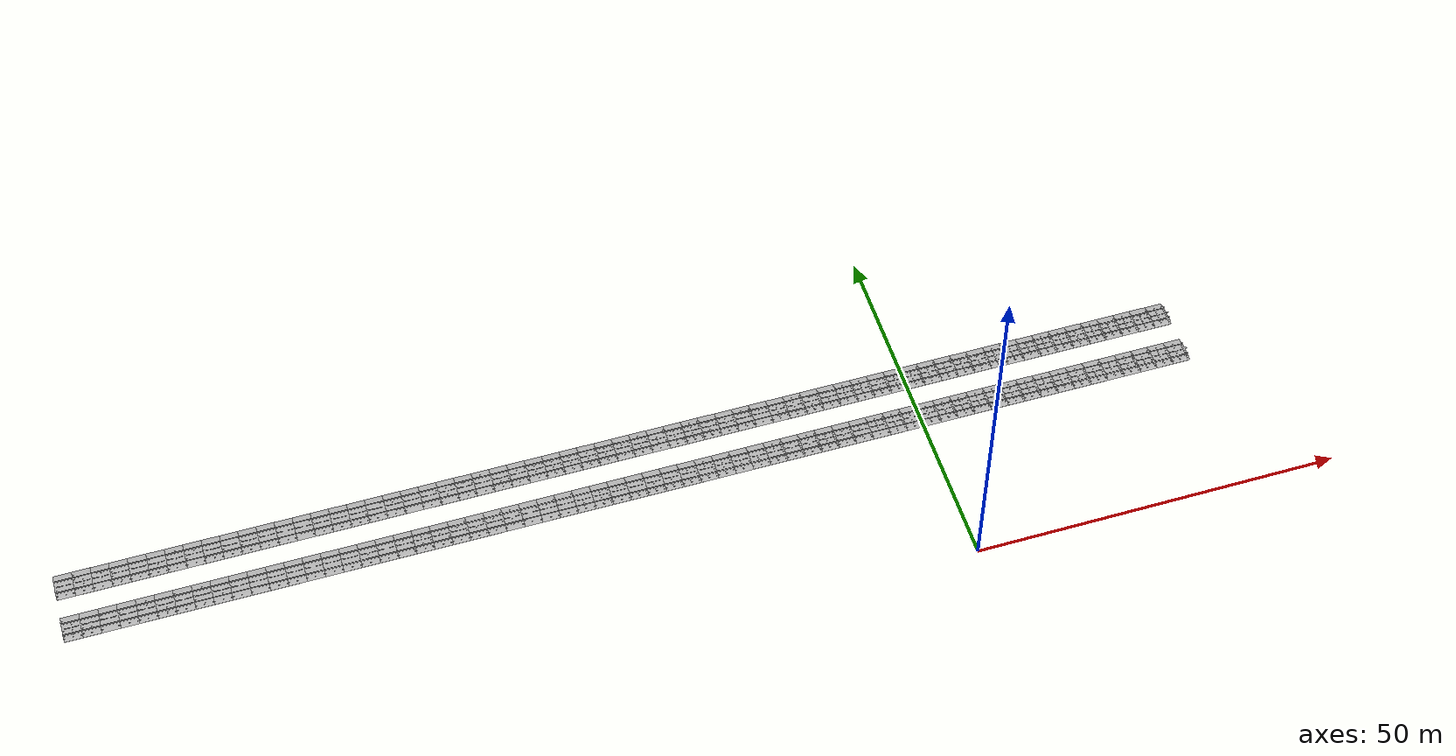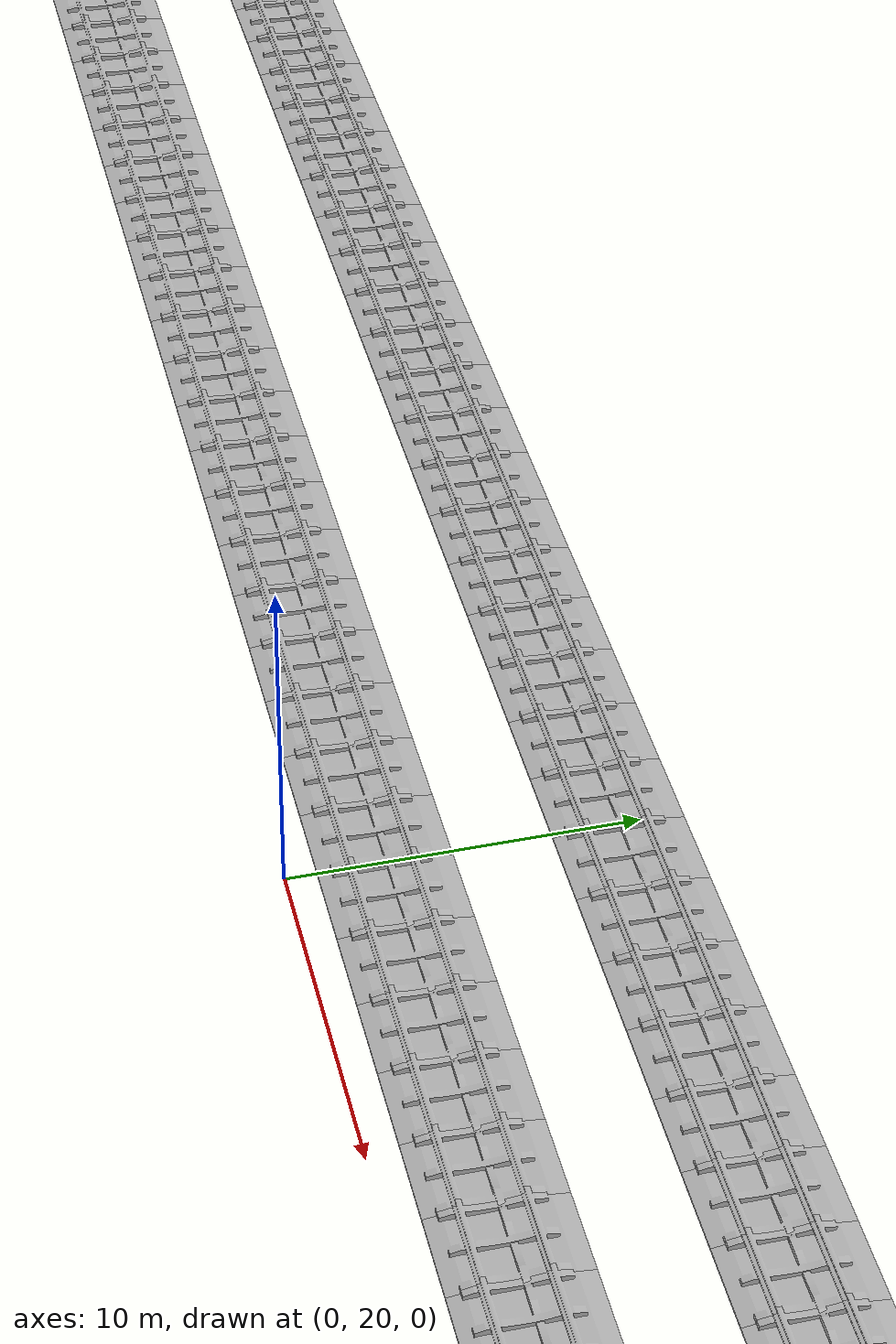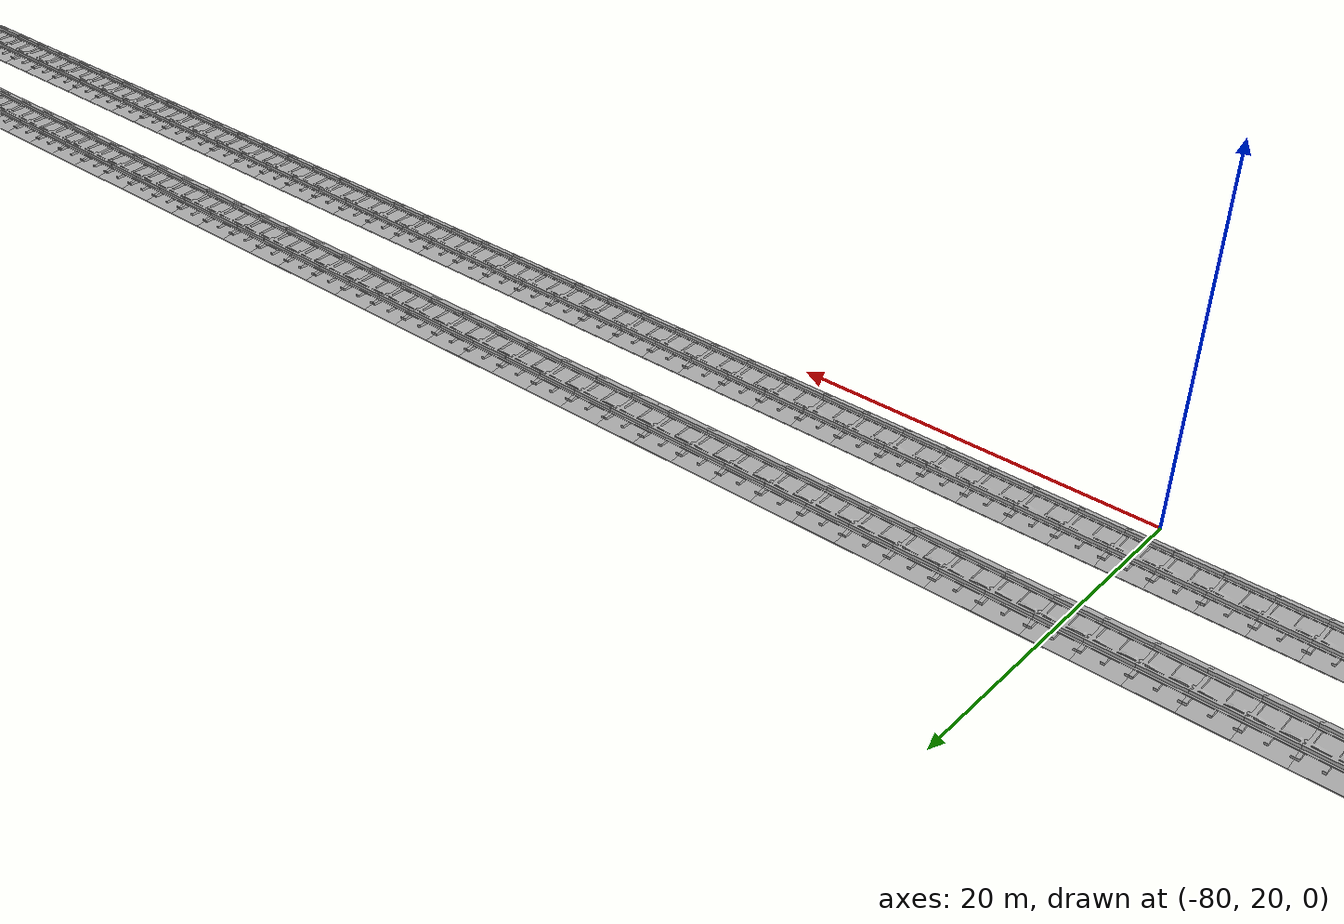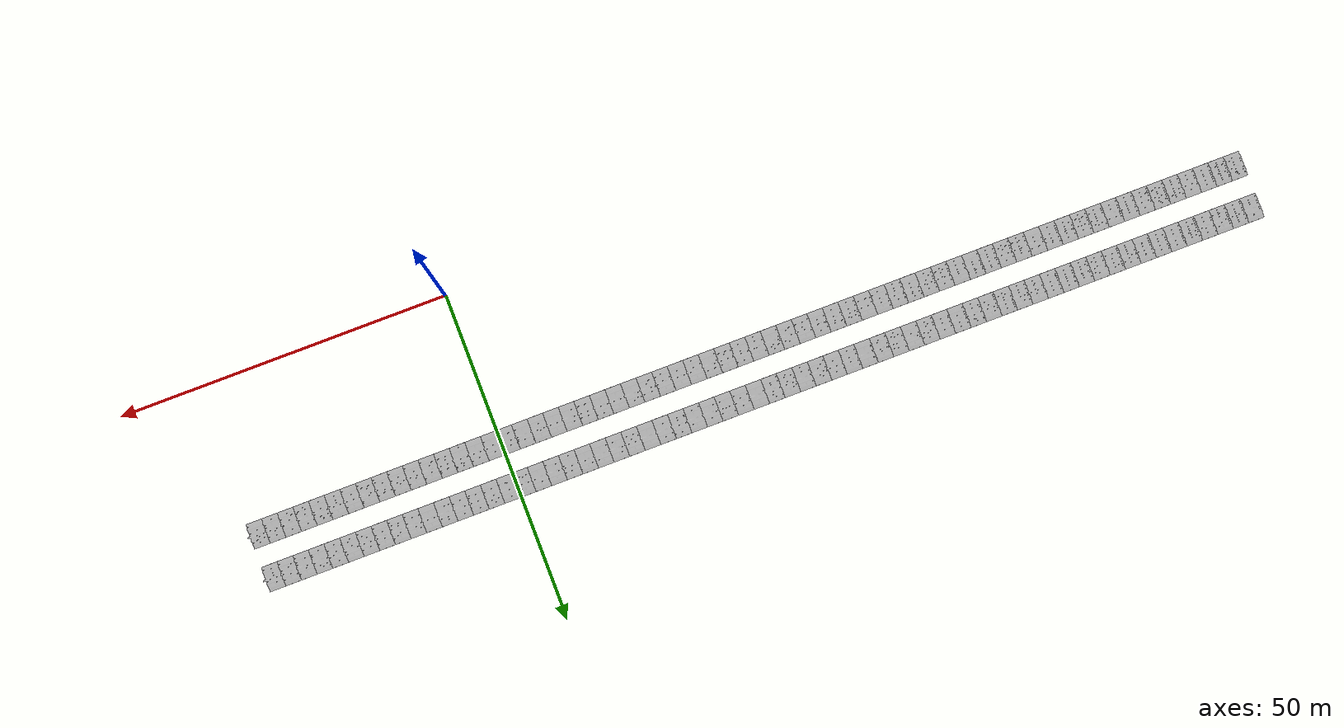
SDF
<sdf version="1.7">
 <world name="default">
  <model name="railway64_0">
   <model name="railway32">
    <model name="railway16">
     <model name="railway8">
      <model name="railway4">
       <model name="railway2">
        <model name="railway">
         <static>1</static>
         <link name="link">
          <visual name="visual"><geometry><mesh><uri>model://railway/meshes/model.dae</uri></mesh></geometry></visual>
         </link>
         <pose>1.19969 -6.9e-05 0 0 -0 0</pose>
        </model>
        <model name="railway_0">
         <static>1</static>
         <link name="link">
          <visual name="visual"><geometry><mesh><uri>model://railway/meshes/model.dae</uri></mesh></geometry></visual>
         </link>
         <pose>-1.1997 6.9e-05 0 0 -0 0</pose>
        </model>
        <static>0</static>
        <pose>-2.39934 4.6e-05 0 0 -0 0</pose>
       </model>
       <model name="railway2_0">
        <model name="railway">
         <static>1</static>
         <link name="link">
          <visual name="visual"><geometry><mesh><uri>model://railway/meshes/model.dae</uri></mesh></geometry></visual>
         </link>
         <pose>1.19969 -6.9e-05 0 0 -0 0</pose>
        </model>
        <model name="railway_0">
         <static>1</static>
         <link name="link">
          <visual name="visual"><geometry><mesh><uri>model://railway/meshes/model.dae</uri></mesh></geometry></visual>
         </link>
         <pose>-1.1997 6.9e-05 0 0 -0 0</pose>
        </model>
        <static>0</static>
        <pose>2.39934 -5.4e-05 0 0 -0 0</pose>
       </model>
       <static>0</static>
       <pose>4.79871 -0.000105 0 0 -0 0</pose>
      </model>
      <model name="railway4_0">
       <model name="railway2">
        <model name="railway">
         <static>1</static>
         <link name="link">
          <visual name="visual"><geometry><mesh><uri>model://railway/meshes/model.dae</uri></mesh></geometry></visual>
         </link>
         <pose>1.19969 -6.9e-05 0 0 -0 0</pose>
        </model>
        <model name="railway_0">
         <static>1</static>
         <link name="link">
          <visual name="visual"><geometry><mesh><uri>model://railway/meshes/model.dae</uri></mesh></geometry></visual>
         </link>
         <pose>-1.1997 6.9e-05 0 0 -0 0</pose>
        </model>
        <static>0</static>
        <pose>-2.39934 4.6e-05 0 0 -0 0</pose>
       </model>
       <model name="railway2_0">
        <model name="railway">
         <static>1</static>
         <link name="link">
          <visual name="visual"><geometry><mesh><uri>model://railway/meshes/model.dae</uri></mesh></geometry></visual>
         </link>
         <pose>1.19969 -6.9e-05 0 0 -0 0</pose>
        </model>
        <model name="railway_0">
         <static>1</static>
         <link name="link">
          <visual name="visual"><geometry><mesh><uri>model://railway/meshes/model.dae</uri></mesh></geometry></visual>
         </link>
         <pose>-1.1997 6.9e-05 0 0 -0 0</pose>
        </model>
        <static>0</static>
        <pose>2.39934 -5.4e-05 0 0 -0 0</pose>
       </model>
       <static>0</static>
       <pose>-4.79871 9.6e-05 0 0 -0 0</pose>
      </model>
      <static>0</static>
      <pose>9.5973 -0.000147 0 0 -0 0</pose>
     </model>
     <model name="railway8_0">
      <model name="railway4">
       <model name="railway2">
        <model name="railway">
         <static>1</static>
         <link name="link">
          <visual name="visual"><geometry><mesh><uri>model://railway/meshes/model.dae</uri></mesh></geometry></visual>
         </link>
         <pose>1.19969 -6.9e-05 0 0 -0 0</pose>
        </model>
        <model name="railway_0">
         <static>1</static>
         <link name="link">
          <visual name="visual"><geometry><mesh><uri>model://railway/meshes/model.dae</uri></mesh></geometry></visual>
         </link>
         <pose>-1.1997 6.9e-05 0 0 -0 0</pose>
        </model>
        <static>0</static>
        <pose>-2.39934 4.6e-05 0 0 -0 0</pose>
       </model>
       <model name="railway2_0">
        <model name="railway">
         <static>1</static>
         <link name="link">
          <visual name="visual"><geometry><mesh><uri>model://railway/meshes/model.dae</uri></mesh></geometry></visual>
         </link>
         <pose>1.19969 -6.9e-05 0 0 -0 0</pose>
        </model>
        <model name="railway_0">
         <static>1</static>
         <link name="link">
          <visual name="visual"><geometry><mesh><uri>model://railway/meshes/model.dae</uri></mesh></geometry></visual>
         </link>
         <pose>-1.1997 6.9e-05 0 0 -0 0</pose>
        </model>
        <static>0</static>
        <pose>2.39934 -5.4e-05 0 0 -0 0</pose>
       </model>
       <static>0</static>
       <pose>4.79871 -0.000105 0 0 -0 0</pose>
      </model>
      <model name="railway4_0">
       <model name="railway2">
        <model name="railway">
         <static>1</static>
         <link name="link">
          <visual name="visual"><geometry><mesh><uri>model://railway/meshes/model.dae</uri></mesh></geometry></visual>
         </link>
         <pose>1.19969 -6.9e-05 0 0 -0 0</pose>
        </model>
        <model name="railway_0">
         <static>1</static>
         <link name="link">
          <visual name="visual"><geometry><mesh><uri>model://railway/meshes/model.dae</uri></mesh></geometry></visual>
         </link>
         <pose>-1.1997 6.9e-05 0 0 -0 0</pose>
        </model>
        <static>0</static>
        <pose>-2.39934 4.6e-05 0 0 -0 0</pose>
       </model>
       <model name="railway2_0">
        <model name="railway">
         <static>1</static>
         <link name="link">
          <visual name="visual"><geometry><mesh><uri>model://railway/meshes/model.dae</uri></mesh></geometry></visual>
         </link>
         <pose>1.19969 -6.9e-05 0 0 -0 0</pose>
        </model>
        <model name="railway_0">
         <static>1</static>
         <link name="link">
          <visual name="visual"><geometry><mesh><uri>model://railway/meshes/model.dae</uri></mesh></geometry></visual>
         </link>
         <pose>-1.1997 6.9e-05 0 0 -0 0</pose>
        </model>
        <static>0</static>
        <pose>2.39934 -5.4e-05 0 0 -0 0</pose>
       </model>
       <static>0</static>
       <pose>-4.79871 9.6e-05 0 0 -0 0</pose>
      </model>
      <static>0</static>
      <pose>-9.59731 0.000145 0 0 -0 0</pose>
     </model>
     <static>0</static>
     <pose>19.1948 -0.00044 0 0 -0 0</pose>
    </model>
    <model name="railway16_0">
     <model name="railway8">
      <model name="railway4">
       <model name="railway2">
        <model name="railway">
         <static>1</static>
         <link name="link">
          <visual name="visual"><geometry><mesh><uri>model://railway/meshes/model.dae</uri></mesh></geometry></visual>
         </link>
         <pose>1.19969 -6.9e-05 0 0 -0 0</pose>
        </model>
        <model name="railway_0">
         <static>1</static>
         <link name="link">
          <visual name="visual"><geometry><mesh><uri>model://railway/meshes/model.dae</uri></mesh></geometry></visual>
         </link>
         <pose>-1.1997 6.9e-05 0 0 -0 0</pose>
        </model>
        <static>0</static>
        <pose>-2.39934 4.6e-05 0 0 -0 0</pose>
       </model>
       <model name="railway2_0">
        <model name="railway">
         <static>1</static>
         <link name="link">
          <visual name="visual"><geometry><mesh><uri>model://railway/meshes/model.dae</uri></mesh></geometry></visual>
         </link>
         <pose>1.19969 -6.9e-05 0 0 -0 0</pose>
        </model>
        <model name="railway_0">
         <static>1</static>
         <link name="link">
          <visual name="visual"><geometry><mesh><uri>model://railway/meshes/model.dae</uri></mesh></geometry></visual>
         </link>
         <pose>-1.1997 6.9e-05 0 0 -0 0</pose>
        </model>
        <static>0</static>
        <pose>2.39934 -5.4e-05 0 0 -0 0</pose>
       </model>
       <static>0</static>
       <pose>4.79871 -0.000105 0 0 -0 0</pose>
      </model>
      <model name="railway4_0">
       <model name="railway2">
        <model name="railway">
         <static>1</static>
         <link name="link">
          <visual name="visual"><geometry><mesh><uri>model://railway/meshes/model.dae</uri></mesh></geometry></visual>
         </link>
         <pose>1.19969 -6.9e-05 0 0 -0 0</pose>
        </model>
        <model name="railway_0">
         <static>1</static>
         <link name="link">
          <visual name="visual"><geometry><mesh><uri>model://railway/meshes/model.dae</uri></mesh></geometry></visual>
         </link>
         <pose>-1.1997 6.9e-05 0 0 -0 0</pose>
        </model>
        <static>0</static>
        <pose>-2.39934 4.6e-05 0 0 -0 0</pose>
       </model>
       <model name="railway2_0">
        <model name="railway">
         <static>1</static>
         <link name="link">
          <visual name="visual"><geometry><mesh><uri>model://railway/meshes/model.dae</uri></mesh></geometry></visual>
         </link>
         <pose>1.19969 -6.9e-05 0 0 -0 0</pose>
        </model>
        <model name="railway_0">
         <static>1</static>
         <link name="link">
          <visual name="visual"><geometry><mesh><uri>model://railway/meshes/model.dae</uri></mesh></geometry></visual>
         </link>
         <pose>-1.1997 6.9e-05 0 0 -0 0</pose>
        </model>
        <static>0</static>
        <pose>2.39934 -5.4e-05 0 0 -0 0</pose>
       </model>
       <static>0</static>
       <pose>-4.79871 9.6e-05 0 0 -0 0</pose>
      </model>
      <static>0</static>
      <pose>9.5973 -0.000147 0 0 -0 0</pose>
     </model>
     <model name="railway8_0">
      <model name="railway4">
       <model name="railway2">
        <model name="railway">
         <static>1</static>
         <link name="link">
          <visual name="visual"><geometry><mesh><uri>model://railway/meshes/model.dae</uri></mesh></geometry></visual>
         </link>
         <pose>1.19969 -6.9e-05 0 0 -0 0</pose>
        </model>
        <model name="railway_0">
         <static>1</static>
         <link name="link">
          <visual name="visual"><geometry><mesh><uri>model://railway/meshes/model.dae</uri></mesh></geometry></visual>
         </link>
         <pose>-1.1997 6.9e-05 0 0 -0 0</pose>
        </model>
        <static>0</static>
        <pose>-2.39934 4.6e-05 0 0 -0 0</pose>
       </model>
       <model name="railway2_0">
        <model name="railway">
         <static>1</static>
         <link name="link">
          <visual name="visual"><geometry><mesh><uri>model://railway/meshes/model.dae</uri></mesh></geometry></visual>
         </link>
         <pose>1.19969 -6.9e-05 0 0 -0 0</pose>
        </model>
        <model name="railway_0">
         <static>1</static>
         <link name="link">
          <visual name="visual"><geometry><mesh><uri>model://railway/meshes/model.dae</uri></mesh></geometry></visual>
         </link>
         <pose>-1.1997 6.9e-05 0 0 -0 0</pose>
        </model>
        <static>0</static>
        <pose>2.39934 -5.4e-05 0 0 -0 0</pose>
       </model>
       <static>0</static>
       <pose>4.79871 -0.000105 0 0 -0 0</pose>
      </model>
      <model name="railway4_0">
       <model name="railway2">
        <model name="railway">
         <static>1</static>
         <link name="link">
          <visual name="visual"><geometry><mesh><uri>model://railway/meshes/model.dae</uri></mesh></geometry></visual>
         </link>
         <pose>1.19969 -6.9e-05 0 0 -0 0</pose>
        </model>
        <model name="railway_0">
         <static>1</static>
         <link name="link">
          <visual name="visual"><geometry><mesh><uri>model://railway/meshes/model.dae</uri></mesh></geometry></visual>
         </link>
         <pose>-1.1997 6.9e-05 0 0 -0 0</pose>
        </model>
        <static>0</static>
        <pose>-2.39934 4.6e-05 0 0 -0 0</pose>
       </model>
       <model name="railway2_0">
        <model name="railway">
         <static>1</static>
         <link name="link">
          <visual name="visual"><geometry><mesh><uri>model://railway/meshes/model.dae</uri></mesh></geometry></visual>
         </link>
         <pose>1.19969 -6.9e-05 0 0 -0 0</pose>
        </model>
        <model name="railway_0">
         <static>1</static>
         <link name="link">
          <visual name="visual"><geometry><mesh><uri>model://railway/meshes/model.dae</uri></mesh></geometry></visual>
         </link>
         <pose>-1.1997 6.9e-05 0 0 -0 0</pose>
        </model>
        <static>0</static>
        <pose>2.39934 -5.4e-05 0 0 -0 0</pose>
       </model>
       <static>0</static>
       <pose>-4.79871 9.6e-05 0 0 -0 0</pose>
      </model>
      <static>0</static>
      <pose>-9.59731 0.000145 0 0 -0 0</pose>
     </model>
     <static>0</static>
     <pose>-19.1948 0.000444 0 0 -0 0</pose>
    </model>
    <static>0</static>
    <pose>38.3896 -0.000844 0 0 -0 0</pose>
   </model>
   <model name="railway32_0">
    <model name="railway16">
     <model name="railway8">
      <model name="railway4">
       <model name="railway2">
        <model name="railway">
         <static>1</static>
         <link name="link">
          <visual name="visual"><geometry><mesh><uri>model://railway/meshes/model.dae</uri></mesh></geometry></visual>
         </link>
         <pose>1.19969 -6.9e-05 0 0 -0 0</pose>
        </model>
        <model name="railway_0">
         <static>1</static>
         <link name="link">
          <visual name="visual"><geometry><mesh><uri>model://railway/meshes/model.dae</uri></mesh></geometry></visual>
         </link>
         <pose>-1.1997 6.9e-05 0 0 -0 0</pose>
        </model>
        <static>0</static>
        <pose>-2.39934 4.6e-05 0 0 -0 0</pose>
       </model>
       <model name="railway2_0">
        <model name="railway">
         <static>1</static>
         <link name="link">
          <visual name="visual"><geometry><mesh><uri>model://railway/meshes/model.dae</uri></mesh></geometry></visual>
         </link>
         <pose>1.19969 -6.9e-05 0 0 -0 0</pose>
        </model>
        <model name="railway_0">
         <static>1</static>
         <link name="link">
          <visual name="visual"><geometry><mesh><uri>model://railway/meshes/model.dae</uri></mesh></geometry></visual>
         </link>
         <pose>-1.1997 6.9e-05 0 0 -0 0</pose>
        </model>
        <static>0</static>
        <pose>2.39934 -5.4e-05 0 0 -0 0</pose>
       </model>
       <static>0</static>
       <pose>4.79871 -0.000105 0 0 -0 0</pose>
      </model>
      <model name="railway4_0">
       <model name="railway2">
        <model name="railway">
         <static>1</static>
         <link name="link">
          <visual name="visual"><geometry><mesh><uri>model://railway/meshes/model.dae</uri></mesh></geometry></visual>
         </link>
         <pose>1.19969 -6.9e-05 0 0 -0 0</pose>
        </model>
        <model name="railway_0">
         <static>1</static>
         <link name="link">
          <visual name="visual"><geometry><mesh><uri>model://railway/meshes/model.dae</uri></mesh></geometry></visual>
         </link>
         <pose>-1.1997 6.9e-05 0 0 -0 0</pose>
        </model>
        <static>0</static>
        <pose>-2.39934 4.6e-05 0 0 -0 0</pose>
       </model>
       <model name="railway2_0">
        <model name="railway">
         <static>1</static>
         <link name="link">
          <visual name="visual"><geometry><mesh><uri>model://railway/meshes/model.dae</uri></mesh></geometry></visual>
         </link>
         <pose>1.19969 -6.9e-05 0 0 -0 0</pose>
        </model>
        <model name="railway_0">
         <static>1</static>
         <link name="link">
          <visual name="visual"><geometry><mesh><uri>model://railway/meshes/model.dae</uri></mesh></geometry></visual>
         </link>
         <pose>-1.1997 6.9e-05 0 0 -0 0</pose>
        </model>
        <static>0</static>
        <pose>2.39934 -5.4e-05 0 0 -0 0</pose>
       </model>
       <static>0</static>
       <pose>-4.79871 9.6e-05 0 0 -0 0</pose>
      </model>
      <static>0</static>
      <pose>9.5973 -0.000147 0 0 -0 0</pose>
     </model>
     <model name="railway8_0">
      <model name="railway4">
       <model name="railway2">
        <model name="railway">
         <static>1</static>
         <link name="link">
          <visual name="visual"><geometry><mesh><uri>model://railway/meshes/model.dae</uri></mesh></geometry></visual>
         </link>
         <pose>1.19969 -6.9e-05 0 0 -0 0</pose>
        </model>
        <model name="railway_0">
         <static>1</static>
         <link name="link">
          <visual name="visual"><geometry><mesh><uri>model://railway/meshes/model.dae</uri></mesh></geometry></visual>
         </link>
         <pose>-1.1997 6.9e-05 0 0 -0 0</pose>
        </model>
        <static>0</static>
        <pose>-2.39934 4.6e-05 0 0 -0 0</pose>
       </model>
       <model name="railway2_0">
        <model name="railway">
         <static>1</static>
         <link name="link">
          <visual name="visual"><geometry><mesh><uri>model://railway/meshes/model.dae</uri></mesh></geometry></visual>
         </link>
         <pose>1.19969 -6.9e-05 0 0 -0 0</pose>
        </model>
        <model name="railway_0">
         <static>1</static>
         <link name="link">
          <visual name="visual"><geometry><mesh><uri>model://railway/meshes/model.dae</uri></mesh></geometry></visual>
         </link>
         <pose>-1.1997 6.9e-05 0 0 -0 0</pose>
        </model>
        <static>0</static>
        <pose>2.39934 -5.4e-05 0 0 -0 0</pose>
       </model>
       <static>0</static>
       <pose>4.79871 -0.000105 0 0 -0 0</pose>
      </model>
      <model name="railway4_0">
       <model name="railway2">
        <model name="railway">
         <static>1</static>
         <link name="link">
          <visual name="visual"><geometry><mesh><uri>model://railway/meshes/model.dae</uri></mesh></geometry></visual>
         </link>
         <pose>1.19969 -6.9e-05 0 0 -0 0</pose>
        </model>
        <model name="railway_0">
         <static>1</static>
         <link name="link">
          <visual name="visual"><geometry><mesh><uri>model://railway/meshes/model.dae</uri></mesh></geometry></visual>
         </link>
         <pose>-1.1997 6.9e-05 0 0 -0 0</pose>
        </model>
        <static>0</static>
        <pose>-2.39934 4.6e-05 0 0 -0 0</pose>
       </model>
       <model name="railway2_0">
        <model name="railway">
         <static>1</static>
         <link name="link">
          <visual name="visual"><geometry><mesh><uri>model://railway/meshes/model.dae</uri></mesh></geometry></visual>
         </link>
         <pose>1.19969 -6.9e-05 0 0 -0 0</pose>
        </model>
        <model name="railway_0">
         <static>1</static>
         <link name="link">
          <visual name="visual"><geometry><mesh><uri>model://railway/meshes/model.dae</uri></mesh></geometry></visual>
         </link>
         <pose>-1.1997 6.9e-05 0 0 -0 0</pose>
        </model>
        <static>0</static>
        <pose>2.39934 -5.4e-05 0 0 -0 0</pose>
       </model>
       <static>0</static>
       <pose>-4.79871 9.6e-05 0 0 -0 0</pose>
      </model>
      <static>0</static>
      <pose>-9.59731 0.000145 0 0 -0 0</pose>
     </model>
     <static>0</static>
     <pose>19.1948 -0.00044 0 0 -0 0</pose>
    </model>
    <model name="railway16_0">
     <model name="railway8">
      <model name="railway4">
       <model name="railway2">
        <model name="railway">
         <static>1</static>
         <link name="link">
          <visual name="visual"><geometry><mesh><uri>model://railway/meshes/model.dae</uri></mesh></geometry></visual>
         </link>
         <pose>1.19969 -6.9e-05 0 0 -0 0</pose>
        </model>
        <model name="railway_0">
         <static>1</static>
         <link name="link">
          <visual name="visual"><geometry><mesh><uri>model://railway/meshes/model.dae</uri></mesh></geometry></visual>
         </link>
         <pose>-1.1997 6.9e-05 0 0 -0 0</pose>
        </model>
        <static>0</static>
        <pose>-2.39934 4.6e-05 0 0 -0 0</pose>
       </model>
       <model name="railway2_0">
        <model name="railway">
         <static>1</static>
         <link name="link">
          <visual name="visual"><geometry><mesh><uri>model://railway/meshes/model.dae</uri></mesh></geometry></visual>
         </link>
         <pose>1.19969 -6.9e-05 0 0 -0 0</pose>
        </model>
        <model name="railway_0">
         <static>1</static>
         <link name="link">
          <visual name="visual"><geometry><mesh><uri>model://railway/meshes/model.dae</uri></mesh></geometry></visual>
         </link>
         <pose>-1.1997 6.9e-05 0 0 -0 0</pose>
        </model>
        <static>0</static>
        <pose>2.39934 -5.4e-05 0 0 -0 0</pose>
       </model>
       <static>0</static>
       <pose>4.79871 -0.000105 0 0 -0 0</pose>
      </model>
      <model name="railway4_0">
       <model name="railway2">
        <model name="railway">
         <static>1</static>
         <link name="link">
          <visual name="visual"><geometry><mesh><uri>model://railway/meshes/model.dae</uri></mesh></geometry></visual>
         </link>
         <pose>1.19969 -6.9e-05 0 0 -0 0</pose>
        </model>
        <model name="railway_0">
         <static>1</static>
         <link name="link">
          <visual name="visual"><geometry><mesh><uri>model://railway/meshes/model.dae</uri></mesh></geometry></visual>
         </link>
         <pose>-1.1997 6.9e-05 0 0 -0 0</pose>
        </model>
        <static>0</static>
        <pose>-2.39934 4.6e-05 0 0 -0 0</pose>
       </model>
       <model name="railway2_0">
        <model name="railway">
         <static>1</static>
         <link name="link">
          <visual name="visual"><geometry><mesh><uri>model://railway/meshes/model.dae</uri></mesh></geometry></visual>
         </link>
         <pose>1.19969 -6.9e-05 0 0 -0 0</pose>
        </model>
        <model name="railway_0">
         <static>1</static>
         <link name="link">
          <visual name="visual"><geometry><mesh><uri>model://railway/meshes/model.dae</uri></mesh></geometry></visual>
         </link>
         <pose>-1.1997 6.9e-05 0 0 -0 0</pose>
        </model>
        <static>0</static>
        <pose>2.39934 -5.4e-05 0 0 -0 0</pose>
       </model>
       <static>0</static>
       <pose>-4.79871 9.6e-05 0 0 -0 0</pose>
      </model>
      <static>0</static>
      <pose>9.5973 -0.000147 0 0 -0 0</pose>
     </model>
     <model name="railway8_0">
      <model name="railway4">
       <model name="railway2">
        <model name="railway">
         <static>1</static>
         <link name="link">
          <visual name="visual"><geometry><mesh><uri>model://railway/meshes/model.dae</uri></mesh></geometry></visual>
         </link>
         <pose>1.19969 -6.9e-05 0 0 -0 0</pose>
        </model>
        <model name="railway_0">
         <static>1</static>
         <link name="link">
          <visual name="visual"><geometry><mesh><uri>model://railway/meshes/model.dae</uri></mesh></geometry></visual>
         </link>
         <pose>-1.1997 6.9e-05 0 0 -0 0</pose>
        </model>
        <static>0</static>
        <pose>-2.39934 4.6e-05 0 0 -0 0</pose>
       </model>
       <model name="railway2_0">
        <model name="railway">
         <static>1</static>
         <link name="link">
          <visual name="visual"><geometry><mesh><uri>model://railway/meshes/model.dae</uri></mesh></geometry></visual>
         </link>
         <pose>1.19969 -6.9e-05 0 0 -0 0</pose>
        </model>
        <model name="railway_0">
         <static>1</static>
         <link name="link">
          <visual name="visual"><geometry><mesh><uri>model://railway/meshes/model.dae</uri></mesh></geometry></visual>
         </link>
         <pose>-1.1997 6.9e-05 0 0 -0 0</pose>
        </model>
        <static>0</static>
        <pose>2.39934 -5.4e-05 0 0 -0 0</pose>
       </model>
       <static>0</static>
       <pose>4.79871 -0.000105 0 0 -0 0</pose>
      </model>
      <model name="railway4_0">
       <model name="railway2">
        <model name="railway">
         <static>1</static>
         <link name="link">
          <visual name="visual"><geometry><mesh><uri>model://railway/meshes/model.dae</uri></mesh></geometry></visual>
         </link>
         <pose>1.19969 -6.9e-05 0 0 -0 0</pose>
        </model>
        <model name="railway_0">
         <static>1</static>
         <link name="link">
          <visual name="visual"><geometry><mesh><uri>model://railway/meshes/model.dae</uri></mesh></geometry></visual>
         </link>
         <pose>-1.1997 6.9e-05 0 0 -0 0</pose>
        </model>
        <static>0</static>
        <pose>-2.39934 4.6e-05 0 0 -0 0</pose>
       </model>
       <model name="railway2_0">
        <model name="railway">
         <static>1</static>
         <link name="link">
          <visual name="visual"><geometry><mesh><uri>model://railway/meshes/model.dae</uri></mesh></geometry></visual>
         </link>
         <pose>1.19969 -6.9e-05 0 0 -0 0</pose>
        </model>
        <model name="railway_0">
         <static>1</static>
         <link name="link">
          <visual name="visual"><geometry><mesh><uri>model://railway/meshes/model.dae</uri></mesh></geometry></visual>
         </link>
         <pose>-1.1997 6.9e-05 0 0 -0 0</pose>
        </model>
        <static>0</static>
        <pose>2.39934 -5.4e-05 0 0 -0 0</pose>
       </model>
       <static>0</static>
       <pose>-4.79871 9.6e-05 0 0 -0 0</pose>
      </model>
      <static>0</static>
      <pose>-9.59731 0.000145 0 0 -0 0</pose>
     </model>
     <static>0</static>
     <pose>-19.1948 0.000444 0 0 -0 0</pose>
    </model>
    <static>0</static>
    <pose>-38.3896 0.000845 0 0 -0 0</pose>
   </model>
   <static>0</static>
   <pose>-39.4578 29.342 0 0 -0 0</pose>
  </model>
  <model name="railway64_1">
   <model name="railway32">
    <model name="railway16">
     <model name="railway8">
      <model name="railway4">
       <model name="railway2">
        <model name="railway">
         <static>1</static>
         <link name="link">
          <visual name="visual"><geometry><mesh><uri>model://railway/meshes/model.dae</uri></mesh></geometry></visual>
         </link>
         <pose>1.19969 -6.9e-05 0 0 -0 0</pose>
        </model>
        <model name="railway_0">
         <static>1</static>
         <link name="link">
          <visual name="visual"><geometry><mesh><uri>model://railway/meshes/model.dae</uri></mesh></geometry></visual>
         </link>
         <pose>-1.1997 6.9e-05 0 0 -0 0</pose>
        </model>
        <static>0</static>
        <pose>-2.39934 4.6e-05 0 0 -0 0</pose>
       </model>
       <model name="railway2_0">
        <model name="railway">
         <static>1</static>
         <link name="link">
          <visual name="visual"><geometry><mesh><uri>model://railway/meshes/model.dae</uri></mesh></geometry></visual>
         </link>
         <pose>1.19969 -6.9e-05 0 0 -0 0</pose>
        </model>
        <model name="railway_0">
         <static>1</static>
         <link name="link">
          <visual name="visual"><geometry><mesh><uri>model://railway/meshes/model.dae</uri></mesh></geometry></visual>
         </link>
         <pose>-1.1997 6.9e-05 0 0 -0 0</pose>
        </model>
        <static>0</static>
        <pose>2.39934 -5.4e-05 0 0 -0 0</pose>
       </model>
       <static>0</static>
       <pose>4.79871 -0.000105 0 0 -0 0</pose>
      </model>
      <model name="railway4_0">
       <model name="railway2">
        <model name="railway">
         <static>1</static>
         <link name="link">
          <visual name="visual"><geometry><mesh><uri>model://railway/meshes/model.dae</uri></mesh></geometry></visual>
         </link>
         <pose>1.19969 -6.9e-05 0 0 -0 0</pose>
        </model>
        <model name="railway_0">
         <static>1</static>
         <link name="link">
          <visual name="visual"><geometry><mesh><uri>model://railway/meshes/model.dae</uri></mesh></geometry></visual>
         </link>
         <pose>-1.1997 6.9e-05 0 0 -0 0</pose>
        </model>
        <static>0</static>
        <pose>-2.39934 4.6e-05 0 0 -0 0</pose>
       </model>
       <model name="railway2_0">
        <model name="railway">
         <static>1</static>
         <link name="link">
          <visual name="visual"><geometry><mesh><uri>model://railway/meshes/model.dae</uri></mesh></geometry></visual>
         </link>
         <pose>1.19969 -6.9e-05 0 0 -0 0</pose>
        </model>
        <model name="railway_0">
         <static>1</static>
         <link name="link">
          <visual name="visual"><geometry><mesh><uri>model://railway/meshes/model.dae</uri></mesh></geometry></visual>
         </link>
         <pose>-1.1997 6.9e-05 0 0 -0 0</pose>
        </model>
        <static>0</static>
        <pose>2.39934 -5.4e-05 0 0 -0 0</pose>
       </model>
       <static>0</static>
       <pose>-4.79871 9.6e-05 0 0 -0 0</pose>
      </model>
      <static>0</static>
      <pose>9.5973 -0.000147 0 0 -0 0</pose>
     </model>
     <model name="railway8_0">
      <model name="railway4">
       <model name="railway2">
        <model name="railway">
         <static>1</static>
         <link name="link">
          <visual name="visual"><geometry><mesh><uri>model://railway/meshes/model.dae</uri></mesh></geometry></visual>
         </link>
         <pose>1.19969 -6.9e-05 0 0 -0 0</pose>
        </model>
        <model name="railway_0">
         <static>1</static>
         <link name="link">
          <visual name="visual"><geometry><mesh><uri>model://railway/meshes/model.dae</uri></mesh></geometry></visual>
         </link>
         <pose>-1.1997 6.9e-05 0 0 -0 0</pose>
        </model>
        <static>0</static>
        <pose>-2.39934 4.6e-05 0 0 -0 0</pose>
       </model>
       <model name="railway2_0">
        <model name="railway">
         <static>1</static>
         <link name="link">
          <visual name="visual"><geometry><mesh><uri>model://railway/meshes/model.dae</uri></mesh></geometry></visual>
         </link>
         <pose>1.19969 -6.9e-05 0 0 -0 0</pose>
        </model>
        <model name="railway_0">
         <static>1</static>
         <link name="link">
          <visual name="visual"><geometry><mesh><uri>model://railway/meshes/model.dae</uri></mesh></geometry></visual>
         </link>
         <pose>-1.1997 6.9e-05 0 0 -0 0</pose>
        </model>
        <static>0</static>
        <pose>2.39934 -5.4e-05 0 0 -0 0</pose>
       </model>
       <static>0</static>
       <pose>4.79871 -0.000105 0 0 -0 0</pose>
      </model>
      <model name="railway4_0">
       <model name="railway2">
        <model name="railway">
         <static>1</static>
         <link name="link">
          <visual name="visual"><geometry><mesh><uri>model://railway/meshes/model.dae</uri></mesh></geometry></visual>
         </link>
         <pose>1.19969 -6.9e-05 0 0 -0 0</pose>
        </model>
        <model name="railway_0">
         <static>1</static>
         <link name="link">
          <visual name="visual"><geometry><mesh><uri>model://railway/meshes/model.dae</uri></mesh></geometry></visual>
         </link>
         <pose>-1.1997 6.9e-05 0 0 -0 0</pose>
        </model>
        <static>0</static>
        <pose>-2.39934 4.6e-05 0 0 -0 0</pose>
       </model>
       <model name="railway2_0">
        <model name="railway">
         <static>1</static>
         <link name="link">
          <visual name="visual"><geometry><mesh><uri>model://railway/meshes/model.dae</uri></mesh></geometry></visual>
         </link>
         <pose>1.19969 -6.9e-05 0 0 -0 0</pose>
        </model>
        <model name="railway_0">
         <static>1</static>
         <link name="link">
          <visual name="visual"><geometry><mesh><uri>model://railway/meshes/model.dae</uri></mesh></geometry></visual>
         </link>
         <pose>-1.1997 6.9e-05 0 0 -0 0</pose>
        </model>
        <static>0</static>
        <pose>2.39934 -5.4e-05 0 0 -0 0</pose>
       </model>
       <static>0</static>
       <pose>-4.79871 9.6e-05 0 0 -0 0</pose>
      </model>
      <static>0</static>
      <pose>-9.59731 0.000145 0 0 -0 0</pose>
     </model>
     <static>0</static>
     <pose>19.1948 -0.00044 0 0 -0 0</pose>
    </model>
    <model name="railway16_0">
     <model name="railway8">
      <model name="railway4">
       <model name="railway2">
        <model name="railway">
         <static>1</static>
         <link name="link">
          <visual name="visual"><geometry><mesh><uri>model://railway/meshes/model.dae</uri></mesh></geometry></visual>
         </link>
         <pose>1.19969 -6.9e-05 0 0 -0 0</pose>
        </model>
        <model name="railway_0">
         <static>1</static>
         <link name="link">
          <visual name="visual"><geometry><mesh><uri>model://railway/meshes/model.dae</uri></mesh></geometry></visual>
         </link>
         <pose>-1.1997 6.9e-05 0 0 -0 0</pose>
        </model>
        <static>0</static>
        <pose>-2.39934 4.6e-05 0 0 -0 0</pose>
       </model>
       <model name="railway2_0">
        <model name="railway">
         <static>1</static>
         <link name="link">
          <visual name="visual"><geometry><mesh><uri>model://railway/meshes/model.dae</uri></mesh></geometry></visual>
         </link>
         <pose>1.19969 -6.9e-05 0 0 -0 0</pose>
        </model>
        <model name="railway_0">
         <static>1</static>
         <link name="link">
          <visual name="visual"><geometry><mesh><uri>model://railway/meshes/model.dae</uri></mesh></geometry></visual>
         </link>
         <pose>-1.1997 6.9e-05 0 0 -0 0</pose>
        </model>
        <static>0</static>
        <pose>2.39934 -5.4e-05 0 0 -0 0</pose>
       </model>
       <static>0</static>
       <pose>4.79871 -0.000105 0 0 -0 0</pose>
      </model>
      <model name="railway4_0">
       <model name="railway2">
        <model name="railway">
         <static>1</static>
         <link name="link">
          <visual name="visual"><geometry><mesh><uri>model://railway/meshes/model.dae</uri></mesh></geometry></visual>
         </link>
         <pose>1.19969 -6.9e-05 0 0 -0 0</pose>
        </model>
        <model name="railway_0">
         <static>1</static>
         <link name="link">
          <visual name="visual"><geometry><mesh><uri>model://railway/meshes/model.dae</uri></mesh></geometry></visual>
         </link>
         <pose>-1.1997 6.9e-05 0 0 -0 0</pose>
        </model>
        <static>0</static>
        <pose>-2.39934 4.6e-05 0 0 -0 0</pose>
       </model>
       <model name="railway2_0">
        <model name="railway">
         <static>1</static>
         <link name="link">
          <visual name="visual"><geometry><mesh><uri>model://railway/meshes/model.dae</uri></mesh></geometry></visual>
         </link>
         <pose>1.19969 -6.9e-05 0 0 -0 0</pose>
        </model>
        <model name="railway_0">
         <static>1</static>
         <link name="link">
          <visual name="visual"><geometry><mesh><uri>model://railway/meshes/model.dae</uri></mesh></geometry></visual>
         </link>
         <pose>-1.1997 6.9e-05 0 0 -0 0</pose>
        </model>
        <static>0</static>
        <pose>2.39934 -5.4e-05 0 0 -0 0</pose>
       </model>
       <static>0</static>
       <pose>-4.79871 9.6e-05 0 0 -0 0</pose>
      </model>
      <static>0</static>
      <pose>9.5973 -0.000147 0 0 -0 0</pose>
     </model>
     <model name="railway8_0">
      <model name="railway4">
       <model name="railway2">
        <model name="railway">
         <static>1</static>
         <link name="link">
          <visual name="visual"><geometry><mesh><uri>model://railway/meshes/model.dae</uri></mesh></geometry></visual>
         </link>
         <pose>1.19969 -6.9e-05 0 0 -0 0</pose>
        </model>
        <model name="railway_0">
         <static>1</static>
         <link name="link">
          <visual name="visual"><geometry><mesh><uri>model://railway/meshes/model.dae</uri></mesh></geometry></visual>
         </link>
         <pose>-1.1997 6.9e-05 0 0 -0 0</pose>
        </model>
        <static>0</static>
        <pose>-2.39934 4.6e-05 0 0 -0 0</pose>
       </model>
       <model name="railway2_0">
        <model name="railway">
         <static>1</static>
         <link name="link">
          <visual name="visual"><geometry><mesh><uri>model://railway/meshes/model.dae</uri></mesh></geometry></visual>
         </link>
         <pose>1.19969 -6.9e-05 0 0 -0 0</pose>
        </model>
        <model name="railway_0">
         <static>1</static>
         <link name="link">
          <visual name="visual"><geometry><mesh><uri>model://railway/meshes/model.dae</uri></mesh></geometry></visual>
         </link>
         <pose>-1.1997 6.9e-05 0 0 -0 0</pose>
        </model>
        <static>0</static>
        <pose>2.39934 -5.4e-05 0 0 -0 0</pose>
       </model>
       <static>0</static>
       <pose>4.79871 -0.000105 0 0 -0 0</pose>
      </model>
      <model name="railway4_0">
       <model name="railway2">
        <model name="railway">
         <static>1</static>
         <link name="link">
          <visual name="visual"><geometry><mesh><uri>model://railway/meshes/model.dae</uri></mesh></geometry></visual>
         </link>
         <pose>1.19969 -6.9e-05 0 0 -0 0</pose>
        </model>
        <model name="railway_0">
         <static>1</static>
         <link name="link">
          <visual name="visual"><geometry><mesh><uri>model://railway/meshes/model.dae</uri></mesh></geometry></visual>
         </link>
         <pose>-1.1997 6.9e-05 0 0 -0 0</pose>
        </model>
        <static>0</static>
        <pose>-2.39934 4.6e-05 0 0 -0 0</pose>
       </model>
       <model name="railway2_0">
        <model name="railway">
         <static>1</static>
         <link name="link">
          <visual name="visual"><geometry><mesh><uri>model://railway/meshes/model.dae</uri></mesh></geometry></visual>
         </link>
         <pose>1.19969 -6.9e-05 0 0 -0 0</pose>
        </model>
        <model name="railway_0">
         <static>1</static>
         <link name="link">
          <visual name="visual"><geometry><mesh><uri>model://railway/meshes/model.dae</uri></mesh></geometry></visual>
         </link>
         <pose>-1.1997 6.9e-05 0 0 -0 0</pose>
        </model>
        <static>0</static>
        <pose>2.39934 -5.4e-05 0 0 -0 0</pose>
       </model>
       <static>0</static>
       <pose>-4.79871 9.6e-05 0 0 -0 0</pose>
      </model>
      <static>0</static>
      <pose>-9.59731 0.000145 0 0 -0 0</pose>
     </model>
     <static>0</static>
     <pose>-19.1948 0.000444 0 0 -0 0</pose>
    </model>
    <static>0</static>
    <pose>38.3896 -0.000844 0 0 -0 0</pose>
   </model>
   <model name="railway32_0">
    <model name="railway16">
     <model name="railway8">
      <model name="railway4">
       <model name="railway2">
        <model name="railway">
         <static>1</static>
         <link name="link">
          <visual name="visual"><geometry><mesh><uri>model://railway/meshes/model.dae</uri></mesh></geometry></visual>
         </link>
         <pose>1.19969 -6.9e-05 0 0 -0 0</pose>
        </model>
        <model name="railway_0">
         <static>1</static>
         <link name="link">
          <visual name="visual"><geometry><mesh><uri>model://railway/meshes/model.dae</uri></mesh></geometry></visual>
         </link>
         <pose>-1.1997 6.9e-05 0 0 -0 0</pose>
        </model>
        <static>0</static>
        <pose>-2.39934 4.6e-05 0 0 -0 0</pose>
       </model>
       <model name="railway2_0">
        <model name="railway">
         <static>1</static>
         <link name="link">
          <visual name="visual"><geometry><mesh><uri>model://railway/meshes/model.dae</uri></mesh></geometry></visual>
         </link>
         <pose>1.19969 -6.9e-05 0 0 -0 0</pose>
        </model>
        <model name="railway_0">
         <static>1</static>
         <link name="link">
          <visual name="visual"><geometry><mesh><uri>model://railway/meshes/model.dae</uri></mesh></geometry></visual>
         </link>
         <pose>-1.1997 6.9e-05 0 0 -0 0</pose>
        </model>
        <static>0</static>
        <pose>2.39934 -5.4e-05 0 0 -0 0</pose>
       </model>
       <static>0</static>
       <pose>4.79871 -0.000105 0 0 -0 0</pose>
      </model>
      <model name="railway4_0">
       <model name="railway2">
        <model name="railway">
         <static>1</static>
         <link name="link">
          <visual name="visual"><geometry><mesh><uri>model://railway/meshes/model.dae</uri></mesh></geometry></visual>
         </link>
         <pose>1.19969 -6.9e-05 0 0 -0 0</pose>
        </model>
        <model name="railway_0">
         <static>1</static>
         <link name="link">
          <visual name="visual"><geometry><mesh><uri>model://railway/meshes/model.dae</uri></mesh></geometry></visual>
         </link>
         <pose>-1.1997 6.9e-05 0 0 -0 0</pose>
        </model>
        <static>0</static>
        <pose>-2.39934 4.6e-05 0 0 -0 0</pose>
       </model>
       <model name="railway2_0">
        <model name="railway">
         <static>1</static>
         <link name="link">
          <visual name="visual"><geometry><mesh><uri>model://railway/meshes/model.dae</uri></mesh></geometry></visual>
         </link>
         <pose>1.19969 -6.9e-05 0 0 -0 0</pose>
        </model>
        <model name="railway_0">
         <static>1</static>
         <link name="link">
          <visual name="visual"><geometry><mesh><uri>model://railway/meshes/model.dae</uri></mesh></geometry></visual>
         </link>
         <pose>-1.1997 6.9e-05 0 0 -0 0</pose>
        </model>
        <static>0</static>
        <pose>2.39934 -5.4e-05 0 0 -0 0</pose>
       </model>
       <static>0</static>
       <pose>-4.79871 9.6e-05 0 0 -0 0</pose>
      </model>
      <static>0</static>
      <pose>9.5973 -0.000147 0 0 -0 0</pose>
     </model>
     <model name="railway8_0">
      <model name="railway4">
       <model name="railway2">
        <model name="railway">
         <static>1</static>
         <link name="link">
          <visual name="visual"><geometry><mesh><uri>model://railway/meshes/model.dae</uri></mesh></geometry></visual>
         </link>
         <pose>1.19969 -6.9e-05 0 0 -0 0</pose>
        </model>
        <model name="railway_0">
         <static>1</static>
         <link name="link">
          <visual name="visual"><geometry><mesh><uri>model://railway/meshes/model.dae</uri></mesh></geometry></visual>
         </link>
         <pose>-1.1997 6.9e-05 0 0 -0 0</pose>
        </model>
        <static>0</static>
        <pose>-2.39934 4.6e-05 0 0 -0 0</pose>
       </model>
       <model name="railway2_0">
        <model name="railway">
         <static>1</static>
         <link name="link">
          <visual name="visual"><geometry><mesh><uri>model://railway/meshes/model.dae</uri></mesh></geometry></visual>
         </link>
         <pose>1.19969 -6.9e-05 0 0 -0 0</pose>
        </model>
        <model name="railway_0">
         <static>1</static>
         <link name="link">
          <visual name="visual"><geometry><mesh><uri>model://railway/meshes/model.dae</uri></mesh></geometry></visual>
         </link>
         <pose>-1.1997 6.9e-05 0 0 -0 0</pose>
        </model>
        <static>0</static>
        <pose>2.39934 -5.4e-05 0 0 -0 0</pose>
       </model>
       <static>0</static>
       <pose>4.79871 -0.000105 0 0 -0 0</pose>
      </model>
      <model name="railway4_0">
       <model name="railway2">
        <model name="railway">
         <static>1</static>
         <link name="link">
          <visual name="visual"><geometry><mesh><uri>model://railway/meshes/model.dae</uri></mesh></geometry></visual>
         </link>
         <pose>1.19969 -6.9e-05 0 0 -0 0</pose>
        </model>
        <model name="railway_0">
         <static>1</static>
         <link name="link">
          <visual name="visual"><geometry><mesh><uri>model://railway/meshes/model.dae</uri></mesh></geometry></visual>
         </link>
         <pose>-1.1997 6.9e-05 0 0 -0 0</pose>
        </model>
        <static>0</static>
        <pose>-2.39934 4.6e-05 0 0 -0 0</pose>
       </model>
       <model name="railway2_0">
        <model name="railway">
         <static>1</static>
         <link name="link">
          <visual name="visual"><geometry><mesh><uri>model://railway/meshes/model.dae</uri></mesh></geometry></visual>
         </link>
         <pose>1.19969 -6.9e-05 0 0 -0 0</pose>
        </model>
        <model name="railway_0">
         <static>1</static>
         <link name="link">
          <visual name="visual"><geometry><mesh><uri>model://railway/meshes/model.dae</uri></mesh></geometry></visual>
         </link>
         <pose>-1.1997 6.9e-05 0 0 -0 0</pose>
        </model>
        <static>0</static>
        <pose>2.39934 -5.4e-05 0 0 -0 0</pose>
       </model>
       <static>0</static>
       <pose>-4.79871 9.6e-05 0 0 -0 0</pose>
      </model>
      <static>0</static>
      <pose>-9.59731 0.000145 0 0 -0 0</pose>
     </model>
     <static>0</static>
     <pose>19.1948 -0.00044 0 0 -0 0</pose>
    </model>
    <model name="railway16_0">
     <model name="railway8">
      <model name="railway4">
       <model name="railway2">
        <model name="railway">
         <static>1</static>
         <link name="link">
          <visual name="visual"><geometry><mesh><uri>model://railway/meshes/model.dae</uri></mesh></geometry></visual>
         </link>
         <pose>1.19969 -6.9e-05 0 0 -0 0</pose>
        </model>
        <model name="railway_0">
         <static>1</static>
         <link name="link">
          <visual name="visual"><geometry><mesh><uri>model://railway/meshes/model.dae</uri></mesh></geometry></visual>
         </link>
         <pose>-1.1997 6.9e-05 0 0 -0 0</pose>
        </model>
        <static>0</static>
        <pose>-2.39934 4.6e-05 0 0 -0 0</pose>
       </model>
       <model name="railway2_0">
        <model name="railway">
         <static>1</static>
         <link name="link">
          <visual name="visual"><geometry><mesh><uri>model://railway/meshes/model.dae</uri></mesh></geometry></visual>
         </link>
         <pose>1.19969 -6.9e-05 0 0 -0 0</pose>
        </model>
        <model name="railway_0">
         <static>1</static>
         <link name="link">
          <visual name="visual"><geometry><mesh><uri>model://railway/meshes/model.dae</uri></mesh></geometry></visual>
         </link>
         <pose>-1.1997 6.9e-05 0 0 -0 0</pose>
        </model>
        <static>0</static>
        <pose>2.39934 -5.4e-05 0 0 -0 0</pose>
       </model>
       <static>0</static>
       <pose>4.79871 -0.000105 0 0 -0 0</pose>
      </model>
      <model name="railway4_0">
       <model name="railway2">
        <model name="railway">
         <static>1</static>
         <link name="link">
          <visual name="visual"><geometry><mesh><uri>model://railway/meshes/model.dae</uri></mesh></geometry></visual>
         </link>
         <pose>1.19969 -6.9e-05 0 0 -0 0</pose>
        </model>
        <model name="railway_0">
         <static>1</static>
         <link name="link">
          <visual name="visual"><geometry><mesh><uri>model://railway/meshes/model.dae</uri></mesh></geometry></visual>
         </link>
         <pose>-1.1997 6.9e-05 0 0 -0 0</pose>
        </model>
        <static>0</static>
        <pose>-2.39934 4.6e-05 0 0 -0 0</pose>
       </model>
       <model name="railway2_0">
        <model name="railway">
         <static>1</static>
         <link name="link">
          <visual name="visual"><geometry><mesh><uri>model://railway/meshes/model.dae</uri></mesh></geometry></visual>
         </link>
         <pose>1.19969 -6.9e-05 0 0 -0 0</pose>
        </model>
        <model name="railway_0">
         <static>1</static>
         <link name="link">
          <visual name="visual"><geometry><mesh><uri>model://railway/meshes/model.dae</uri></mesh></geometry></visual>
         </link>
         <pose>-1.1997 6.9e-05 0 0 -0 0</pose>
        </model>
        <static>0</static>
        <pose>2.39934 -5.4e-05 0 0 -0 0</pose>
       </model>
       <static>0</static>
       <pose>-4.79871 9.6e-05 0 0 -0 0</pose>
      </model>
      <static>0</static>
      <pose>9.5973 -0.000147 0 0 -0 0</pose>
     </model>
     <model name="railway8_0">
      <model name="railway4">
       <model name="railway2">
        <model name="railway">
         <static>1</static>
         <link name="link">
          <visual name="visual"><geometry><mesh><uri>model://railway/meshes/model.dae</uri></mesh></geometry></visual>
         </link>
         <pose>1.19969 -6.9e-05 0 0 -0 0</pose>
        </model>
        <model name="railway_0">
         <static>1</static>
         <link name="link">
          <visual name="visual"><geometry><mesh><uri>model://railway/meshes/model.dae</uri></mesh></geometry></visual>
         </link>
         <pose>-1.1997 6.9e-05 0 0 -0 0</pose>
        </model>
        <static>0</static>
        <pose>-2.39934 4.6e-05 0 0 -0 0</pose>
       </model>
       <model name="railway2_0">
        <model name="railway">
         <static>1</static>
         <link name="link">
          <visual name="visual"><geometry><mesh><uri>model://railway/meshes/model.dae</uri></mesh></geometry></visual>
         </link>
         <pose>1.19969 -6.9e-05 0 0 -0 0</pose>
        </model>
        <model name="railway_0">
         <static>1</static>
         <link name="link">
          <visual name="visual"><geometry><mesh><uri>model://railway/meshes/model.dae</uri></mesh></geometry></visual>
         </link>
         <pose>-1.1997 6.9e-05 0 0 -0 0</pose>
        </model>
        <static>0</static>
        <pose>2.39934 -5.4e-05 0 0 -0 0</pose>
       </model>
       <static>0</static>
       <pose>4.79871 -0.000105 0 0 -0 0</pose>
      </model>
      <model name="railway4_0">
       <model name="railway2">
        <model name="railway">
         <static>1</static>
         <link name="link">
          <visual name="visual"><geometry><mesh><uri>model://railway/meshes/model.dae</uri></mesh></geometry></visual>
         </link>
         <pose>1.19969 -6.9e-05 0 0 -0 0</pose>
        </model>
        <model name="railway_0">
         <static>1</static>
         <link name="link">
          <visual name="visual"><geometry><mesh><uri>model://railway/meshes/model.dae</uri></mesh></geometry></visual>
         </link>
         <pose>-1.1997 6.9e-05 0 0 -0 0</pose>
        </model>
        <static>0</static>
        <pose>-2.39934 4.6e-05 0 0 -0 0</pose>
       </model>
       <model name="railway2_0">
        <model name="railway">
         <static>1</static>
         <link name="link">
          <visual name="visual"><geometry><mesh><uri>model://railway/meshes/model.dae</uri></mesh></geometry></visual>
         </link>
         <pose>1.19969 -6.9e-05 0 0 -0 0</pose>
        </model>
        <model name="railway_0">
         <static>1</static>
         <link name="link">
          <visual name="visual"><geometry><mesh><uri>model://railway/meshes/model.dae</uri></mesh></geometry></visual>
         </link>
         <pose>-1.1997 6.9e-05 0 0 -0 0</pose>
        </model>
        <static>0</static>
        <pose>2.39934 -5.4e-05 0 0 -0 0</pose>
       </model>
       <static>0</static>
       <pose>-4.79871 9.6e-05 0 0 -0 0</pose>
      </model>
      <static>0</static>
      <pose>-9.59731 0.000145 0 0 -0 0</pose>
     </model>
     <static>0</static>
     <pose>-19.1948 0.000444 0 0 -0 0</pose>
    </model>
    <static>0</static>
    <pose>-38.3896 0.000845 0 0 -0 0</pose>
   </model>
   <static>0</static>
   <pose>-39.4807 22.7831 0 0 -0 0</pose>
  </model>
 </world>
</sdf>
